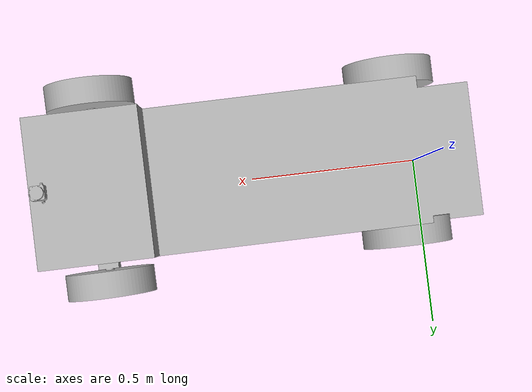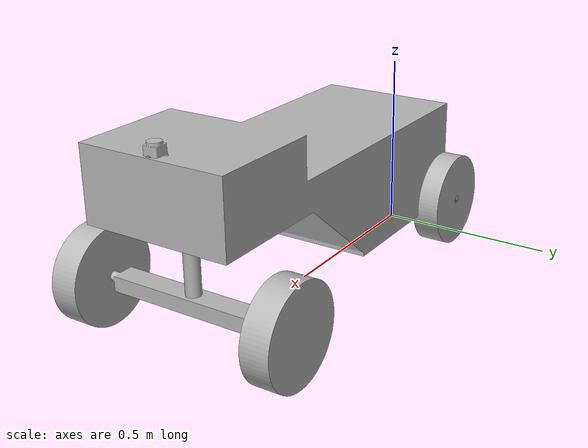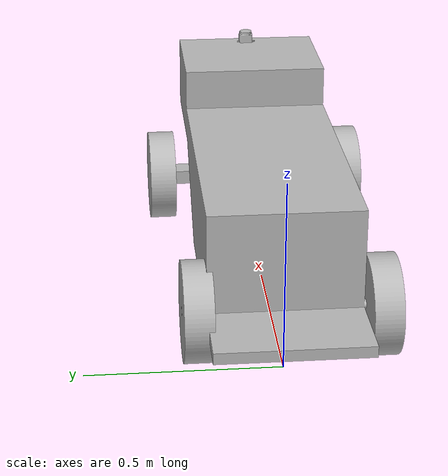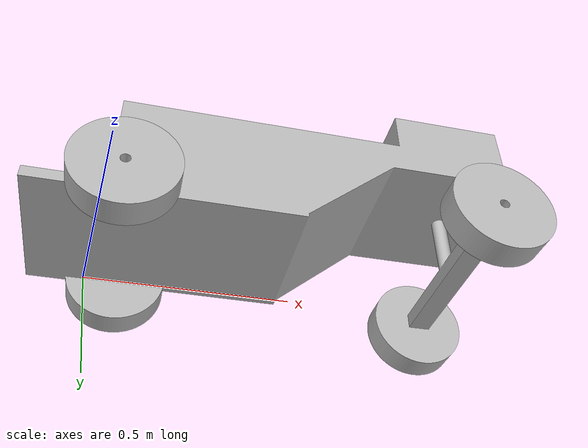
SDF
<sdf version='1.7'>
  <model name='hermes'>
    <link name='base_footprint'>
      <inertial>
        <pose>0.259917 -0.001833 -0.170611 0 -0 0</pose>
        <mass>8</mass>
        <inertia>
          <ixx>3.95495</ixx>
          <ixy>0.0114364</ixy>
          <ixz>-1.43093</ixz>
          <iyy>5.57623</iyy>
          <iyz>0.0100932</iyz>
          <izz>4.12144</izz>
        </inertia>
      </inertial>
      <visual name='base_footprint_fixed_joint_lump__base_link_visual'>
        <pose>0.505754 -0.007177 0.122557 0 -0 0</pose>
        <geometry>
          <mesh>
            <scale>1 1 1</scale>
            <uri>/home/aleksmalm/Hermes/hermes_ws/src/hermes_urdf/urdf/kere.stl</uri>
          </mesh>
        </geometry>
      </visual>
      <visual name='base_footprint_fixed_joint_lump__ld19_visual_1'>
        <pose>1.03967 -0.007333 0.517557 0 0 -1.5708</pose>
        <geometry>
          <mesh>
            <scale>1 1 1</scale>
            <uri>/home/aleksmalm/Hermes/hermes_ws/src/hermes_urdf/urdf/ld19.stl</uri>
          </mesh>
        </geometry>
      </visual>
    </link>
    <joint name='base_rear_left_wheel_joint' type='revolute'>
      <pose relative_to='base_footprint'>0.066534 0.250323 0.132557 3.14159 0 -3.14159</pose>
      <parent>base_footprint</parent>
      <child>rear_left_wheel</child>
      <axis>
        <xyz>0 1 0</xyz>
        <limit>
          <lower>-1e+16</lower>
          <upper>1e+16</upper>
        </limit>
        <dynamics>
          <spring_reference>0</spring_reference>
          <spring_stiffness>0</spring_stiffness>
        </dynamics>
      </axis>
    </joint>
    <link name='rear_left_wheel'>
      <pose relative_to='base_rear_left_wheel_joint'>0 0 0 0 -0 0</pose>
      <inertial>
        <pose>0 0 0 0 -0 0</pose>
        <mass>1.5</mass>
        <inertia>
          <ixx>0.3</ixx>
          <ixy>0</ixy>
          <ixz>0</ixz>
          <iyy>0.3</iyy>
          <iyz>0</iyz>
          <izz>0.3</izz>
        </inertia>
      </inertial>
      <visual name='rear_left_wheel_visual'>
        <pose>0 0 0 0 -0 0</pose>
        <geometry>
          <mesh>
            <scale>1 1 1</scale>
            <uri>/home/aleksmalm/Hermes/hermes_ws/src/hermes_urdf/urdf/rehv.stl</uri>
          </mesh>
        </geometry>
      </visual>
    </link>
    <joint name='base_rear_right_wheel_joint' type='revolute'>
      <pose relative_to='base_footprint'>0.066534 -0.214677 0.132557 0 -0 0</pose>
      <parent>base_footprint</parent>
      <child>rear_right_wheel</child>
      <axis>
        <xyz>0 1 0</xyz>
        <limit>
          <lower>-1e+16</lower>
          <upper>1e+16</upper>
        </limit>
        <dynamics>
          <spring_reference>0</spring_reference>
          <spring_stiffness>0</spring_stiffness>
        </dynamics>
      </axis>
    </joint>
    <link name='rear_right_wheel'>
      <pose relative_to='base_rear_right_wheel_joint'>0 0 0 0 -0 0</pose>
      <inertial>
        <pose>0 0 0 0 -0 0</pose>
        <mass>1.5</mass>
        <inertia>
          <ixx>0.3</ixx>
          <ixy>0</ixy>
          <ixz>0</ixz>
          <iyy>0.3</iyy>
          <iyz>0</iyz>
          <izz>0.3</izz>
        </inertia>
      </inertial>
      <visual name='rear_right_wheel_visual'>
        <pose>0 0 0 0 -0 0</pose>
        <geometry>
          <mesh>
            <scale>1 1 1</scale>
            <uri>/home/aleksmalm/Hermes/hermes_ws/src/hermes_urdf/urdf/rehv.stl</uri>
          </mesh>
        </geometry>
      </visual>
    </link>
    <joint name='liigend_to_kere_joint' type='revolute'>
      <pose relative_to='base_footprint'>0.948334 -0.007177 0.127557 0 -0 -1.5708</pose>
      <parent>base_footprint</parent>
      <child>liigend</child>
      <axis>
        <xyz>0 0 1</xyz>
        <limit>
          <lower>-1e+16</lower>
          <upper>1e+16</upper>
        </limit>
        <dynamics>
          <spring_reference>0</spring_reference>
          <spring_stiffness>0</spring_stiffness>
        </dynamics>
      </axis>
    </joint>
    <link name='liigend'>
      <pose relative_to='liigend_to_kere_joint'>0 0 0 0 -0 0</pose>
      <inertial>
        <pose>0 0 0 0 -0 0</pose>
        <mass>3</mass>
        <inertia>
          <ixx>0.7</ixx>
          <ixy>0</ixy>
          <ixz>0</ixz>
          <iyy>0.7</iyy>
          <iyz>0</iyz>
          <izz>0.7</izz>
        </inertia>
      </inertial>
      <visual name='liigend_visual'>
        <pose>0 0 0 0 -0 0</pose>
        <geometry>
          <mesh>
            <scale>1 1 1</scale>
            <uri>/home/aleksmalm/Hermes/hermes_ws/src/hermes_urdf/urdf/liigend.stl</uri>
          </mesh>
        </geometry>
      </visual>
    </link>
    <joint name='base_front_left_wheel_joint' type='revolute'>
      <pose relative_to='liigend'>-0.302323 0 0 0 -0 0</pose>
      <parent>liigend</parent>
      <child>front_left_wheel</child>
      <axis>
        <xyz>1 0 0</xyz>
        <limit>
          <lower>-1e+16</lower>
          <upper>1e+16</upper>
        </limit>
        <dynamics>
          <spring_reference>0</spring_reference>
          <spring_stiffness>0</spring_stiffness>
        </dynamics>
      </axis>
    </joint>
    <link name='front_left_wheel'>
      <pose relative_to='base_front_left_wheel_joint'>0 0 0 0 -0 0</pose>
      <inertial>
        <pose>0 0 0 0 -0 0</pose>
        <mass>1.5</mass>
        <inertia>
          <ixx>0.3</ixx>
          <ixy>0</ixy>
          <ixz>0</ixz>
          <iyy>0.3</iyy>
          <iyz>0</iyz>
          <izz>0.3</izz>
        </inertia>
      </inertial>
      <visual name='front_left_wheel_visual'>
        <pose>0 0 0 0 -0 1.58</pose>
        <geometry>
          <mesh>
            <scale>1 1 1</scale>
            <uri>/home/aleksmalm/Hermes/hermes_ws/src/hermes_urdf/urdf/rehv.stl</uri>
          </mesh>
        </geometry>
      </visual>
    </link>
    <joint name='base_front_right_wheel_joint' type='revolute'>
      <pose relative_to='liigend'>0.252377 0 0 0 -0 0</pose>
      <parent>liigend</parent>
      <child>front_right_wheel</child>
      <axis>
        <xyz>1 0 0</xyz>
        <limit>
          <lower>-1e+16</lower>
          <upper>1e+16</upper>
        </limit>
        <dynamics>
          <spring_reference>0</spring_reference>
          <spring_stiffness>0</spring_stiffness>
        </dynamics>
      </axis>
    </joint>
    <link name='front_right_wheel'>
      <pose relative_to='base_front_right_wheel_joint'>0 0 0 0 -0 0</pose>
      <inertial>
        <pose>0 0 0 0 -0 0</pose>
        <mass>1.5</mass>
        <inertia>
          <ixx>0.3</ixx>
          <ixy>0</ixy>
          <ixz>0</ixz>
          <iyy>0.3</iyy>
          <iyz>0</iyz>
          <izz>0.3</izz>
        </inertia>
      </inertial>
      <visual name='front_right_wheel_visual'>
        <pose>0 0 0 0 -0 1.583</pose>
        <geometry>
          <mesh>
            <scale>1 1 1</scale>
            <uri>/home/aleksmalm/Hermes/hermes_ws/src/hermes_urdf/urdf/rehv.stl</uri>
          </mesh>
        </geometry>
      </visual>
    </link>
    <static>0</static>
    <plugin name='differential_drive_controller' filename='libgazebo_ros_diff_drive.so'>
      <updateRate>10</updateRate>
      <leftJoint>base_front_left_wheel_joint</leftJoint>
      <rightJoint>base_front_right_wheel_joint</rightJoint>
      <wheelSeparation>0.54</wheelSeparation>
      <wheelDiameter>0.254</wheelDiameter>
      <wheelAcceleration>1.0</wheelAcceleration>
      <wheelTorque>20</wheelTorque>
      <commandTopic>cmd_vel</commandTopic>
      <odometryTopic>odom</odometryTopic>
      <odometryFrame>odom</odometryFrame>
      <robotBaseFrame>base_footprint</robotBaseFrame>
      <odometrySource>1</odometrySource>
      <publishWheelTF>1</publishWheelTF>
      <publishOdom>1</publishOdom>
      <publishWheelJointState>1</publishWheelJointState>
      <legacyMode>0</legacyMode>
    </plugin>
  </model>
</sdf>
